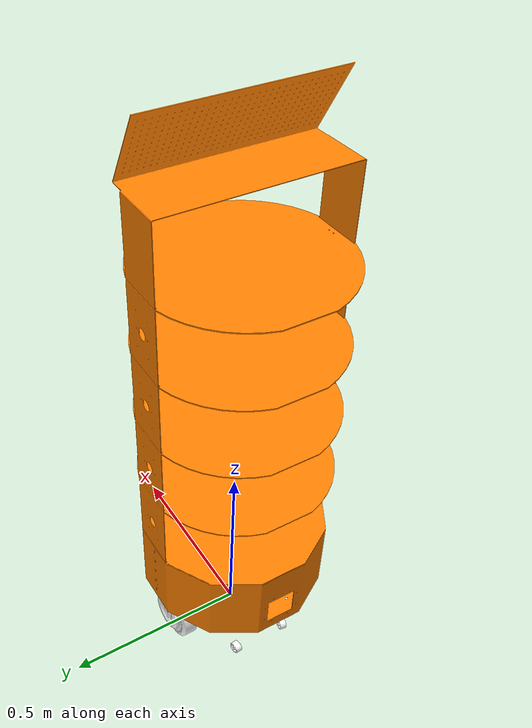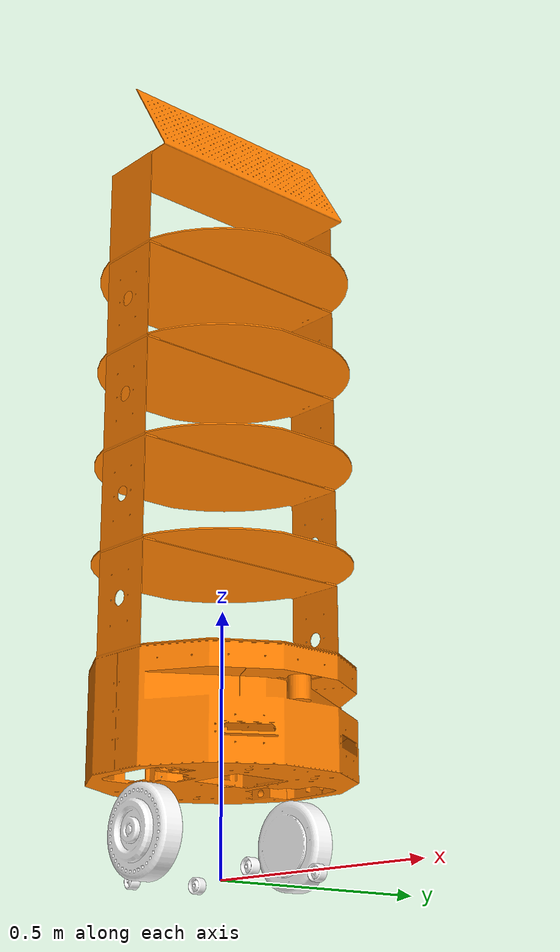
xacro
<?xml version="1.0" encoding="utf-8"?>
<!-- Derived from `urdf/reemen-clone.urdf` (SolidWorks exporter output). -->
<robot xmlns:xacro="http://www.ros.org/wiki/xacro" name="reemen">
  <!-- Mesh paths use `package://my_robot/...` so Gazebo can resolve them via `GZ_SIM_RESOURCE_PATH` / `IGN_GAZEBO_RESOURCE_PATH`. -->

  <xacro:arg name="robot_namespace" default="/"/>
  <xacro:arg name="controller_yaml" default="$(find reeman_clone_description)/config/diff_drive_controller.yaml"/>

  <link name="base_footprint"/>

  <joint name="base_footprint_joint" type="fixed">
    <parent link="base_footprint"/>
    <child link="base_link"/>
    <origin xyz="0 0 0.08" rpy="0 0 0"/>
  </joint>

  <!-- ROM DYNAMICS ADD -->
  <link name="camera_link"/>
  <joint name="camera_link_to_base_link" type="fixed">
    <origin xyz="0.1 0 1.3" rpy="0 0 0"/>
    <parent link="base_link"/>
    <child link="camera_link"/>
    <axis xyz="0 0 0"/>
  </joint>

  <link name="three_d_camera_link"/>
  <joint name="three_d_camera_link_to_base_link" type="fixed">
    <origin xyz="0.25 0 0.15" rpy="0 -0.78 0"/>
    <parent link="base_link"/>
    <child link="three_d_camera_link"/>
    <axis xyz="0 0 0"/>
  </joint>

  <link name="laser"/>
  <joint name="laser_to_base_link" type="fixed">
    <origin xyz="0.23 0 0.23" rpy="3.14 0 0"/>
    <parent link="base_link"/>
    <child link="laser"/>
    <axis xyz="0 0 0"/>
  </joint>

  <link name="usb_imu_link"/>
  <joint name="usb_imu_link_to_base_link" type="fixed">
    <origin xyz="0.07 0 0.05" rpy="0 3.14 -1.57"/>
    <parent link="base_link"/>
    <child link="usb_imu_link"/>
    <axis xyz="0 0 0"/>
  </joint>

  <link name="board_imu_link"/>
  <joint name="board_imu_link_to_base_link" type="fixed">
    <origin xyz="0.07 0 0.18" rpy="0 0 3.14"/>
    <parent link="base_link"/>
    <child link="board_imu_link"/>
    <axis xyz="0 0 0"/>
  </joint>
  <!-- ROM DYNAMICS END -->

  <link
    name="base_link">
    <inertial>
      <origin xyz="-0.02 0.0 -0.05" rpy="0 0 0" />
      <mass value="10.0" /> <inertia
        ixx="0.077"
        ixy="0"
        ixz="0"
        iyy="0.108"
        iyz="0"
        izz="0.161" />
    </inertial>
    <visual>
      <origin
        xyz="0 0 0"
        rpy="0 0 0" />
      <geometry>
        <mesh
          filename="package://reeman_clone_description/meshes/base_link.STL" />
      </geometry>
      <material
        name="">
        <color rgba="1.0 0.5 0.0 1.0" />
      </material>
    </visual>
    <collision>
      <!-- Simplified hull collision to avoid snagging on scanned-floor micro triangles. -->
      <origin
        xyz="0 0 0.08"
        rpy="0 0 0" />
      <geometry>
        <box size="0.34 0.28 0.12"/>
      </geometry>
    </collision>
  </link>

  <link
    name="right_wheel_link">
    <inertial>
      <origin
        xyz="-1.22238889496695E-09 0.00261076778922065 1.06166525570828E-09"
        rpy="0 0 0" />
      <mass
        value="1.13468316605061" />
      <inertia
        ixx="0.00214377738340467"
        ixy="1.90141727129734E-09"
        ixz="-8.50793852563956E-12"
        iyy="0.00371288553259231"
        iyz="-9.49731061124577E-10"
        izz="0.00214377736881791" />
    </inertial>
    <visual>
      <origin
        xyz="0 0 0"
        rpy="0 0 0" />
      <geometry>
        <mesh
          filename="package://reeman_clone_description/meshes/right_wheel_link.STL" />
      </geometry>
      <material
        name="">
        <color
          rgba="1 1 1 1" />
      </material>
    </visual>
    <collision>
      <!-- Use a simple cylinder collision for stable wheel-ground contact in Gazebo. -->
      <origin
        xyz="0 0 0"
        rpy="1.5708 0 0" />
      <geometry>
        <cylinder radius="0.085" length="0.045"/>
      </geometry>
    </collision>
  </link>

  <joint
    name="right_wheel_joint"
    type="continuous">
    <origin
      xyz="-0.000612714327570671 -0.178737474015559 -0.0067060362648815"
      rpy="0 0 0" />
    <parent
      link="base_link" />
    <child
      link="right_wheel_link" />
    <axis
      xyz="0 1 0" />
    <!-- effort limit gives Gazebo ODE motor a non-zero max force budget;
         without this, velocity commands have no traction and robot won't move -->
    <limit effort="10.0" velocity="15.0"/>
    <dynamics damping="0.001" friction="0.0"/>
  </joint>

  <link
    name="left_wheel_link">
    <inertial>
      <origin
        xyz="1.56960827668584E-09 -0.00261076778922059 -3.97111538097406E-10"
        rpy="0 0 0" />
      <mass
        value="1.1346831660506" />
      <inertia
        ixx="0.00214377738155265"
        ixy="1.86551956893084E-09"
        ixz="-9.79641792816089E-12"
        iyy="0.00371288553259228"
        iyz="-1.0184368717158E-09"
        izz="0.0021437773706699" />
    </inertial>
    <visual>
      <origin
        xyz="0 0 0"
        rpy="0 0 0" />
      <geometry>
        <mesh
          filename="package://reeman_clone_description/meshes/left_wheel_link.STL" />
      </geometry>
      <material
        name="">
        <color
          rgba="1 1 1 1" />
      </material>
    </visual>
    <collision>
      <!-- Use a simple cylinder collision for stable wheel-ground contact in Gazebo. -->
      <origin
        xyz="0 0 0"
        rpy="1.5708 0 0" />
      <geometry>
        <cylinder radius="0.085" length="0.045"/>
      </geometry>
    </collision>
  </link>

  <joint
    name="left_wheel_joint"
    type="continuous">
    <origin
      xyz="-0.00111271860764666 0.186733072210104 -0.0067060362648807"
      rpy="0 0 0" />
    <parent
      link="base_link" />
    <child
      link="left_wheel_link" />
    <axis
      xyz="0 1 0" />
    <limit effort="10.0" velocity="15.0"/>
    <dynamics damping="0.001" friction="0.0"/>
  </joint>

  <link
    name="front_right_caster_link">
    <inertial>
      <origin
        xyz="9.80282521823028E-12 3.37561645302742E-11 -1.03845265719826E-11"
        rpy="0 0 0" />
      <mass
        value="0.0103871549572359" />
      <inertia
        ixx="9.72294235682643E-07"
        ixy="5.19022156708706E-09"
        ixz="4.6110233329234E-15"
        iyy="1.47607253400214E-06"
        iyz="4.47572669905215E-13"
        izz="9.72240768629537E-07" />
    </inertial>
    <visual>
      <origin
        xyz="0 0 0"
        rpy="0 0 0" />
      <geometry>
        <mesh
          filename="package://reeman_clone_description/meshes/front_right_caster_link.STL" />
      </geometry>
      <material
        name="">
        <color
          rgba="1 1 1 1" />
      </material>
    </visual>
    <collision>
      <origin xyz="0 0 0" rpy="0 0 0" />
      <geometry>
        <!-- Actual STL radius: x/z extents ±0.016m -->
        <sphere radius="0.016"/>
      </geometry>
    </collision>
  </link>

  <joint
    name="front_right_caster_joint"
    type="fixed">
    <origin
      xyz="0.16615 -0.074374 -0.073"
      rpy="0 0 0" />
    <parent
      link="base_link" />
    <child
      link="front_right_caster_link" />
    <axis
      xyz="0 0 0" />
  </joint>

  <link
    name="front_left_caster_link">
    <inertial>
      <origin
        xyz="0 2.77555756156289E-17 0"
        rpy="0 0 0" />
      <mass
        value="0.0103871549572359" />
      <inertia
        ixx="9.7503779582315E-07"
        ixy="-3.74373788735228E-08"
        ixz="-1.59185679989932E-14"
        iyy="1.4733289738613E-06"
        iyz="2.13068500263688E-13"
        izz="9.72240768629193E-07" />
    </inertial>
    <visual>
      <origin
        xyz="0 0 0"
        rpy="0 0 0" />
      <geometry>
        <mesh
          filename="package://reeman_clone_description/meshes/front_left_caster_link.STL" />
      </geometry>
      <material
        name="">
        <color
          rgba="1 1 1 1" />
      </material>
    </visual>
    <collision>
      <origin xyz="0 0 0" rpy="0 0 0" />
      <geometry>
        <sphere radius="0.016"/>
      </geometry>
    </collision>
  </link>

  <joint
    name="front_left_caster_joint"
    type="fixed">
    <origin
      xyz="0.16674791871922 0.0817655257441773 -0.073"
      rpy="0 0 0" />
    <parent
      link="base_link" />
    <child
      link="front_left_caster_link" />
    <axis
      xyz="0 0 0" />
  </joint>

  <link
    name="back_right_caster_link">
    <inertial>
      <origin
        xyz="0 1.38777878078145E-17 -2.77555756156289E-17"
        rpy="0 0 0" />
      <mass
        value="0.0103871549572359" />
      <inertia
        ixx="9.81214153150242E-07"
        ixy="6.66410857927456E-08"
        ixz="3.42446508638621E-23"
        iyy="1.4671526165342E-06"
        iyz="9.21100098637752E-23"
        izz="9.72240768629191E-07" />
    </inertial>
    <visual>
      <origin
        xyz="0 0 0"
        rpy="0 0 0" />
      <geometry>
        <mesh
          filename="package://reeman_clone_description/meshes/back_right_caster_link.STL" />
      </geometry>
      <material
        name="">
        <color
          rgba="1 1 1 1" />
      </material>
    </visual>
    <collision>
      <origin xyz="0 0 0" rpy="0 0 0" />
      <geometry>
        <sphere radius="0.016"/>
      </geometry>
    </collision>
  </link>

  <joint
    name="back_right_caster_joint"
    type="fixed">
    <origin
      xyz="-0.16677 -0.073778 -0.073"
      rpy="0 0 0" />
    <parent
      link="base_link" />
    <child
      link="back_right_caster_link" />
    <axis
      xyz="0 0 0" />
  </joint>

  <link
    name="back_left_caster_link">
    <inertial>
      <origin
        xyz="0 0 0"
        rpy="0 0 0" />
      <mass
        value="0.01" />
      <!-- Small but non-zero inertia to prevent Gazebo physics NaN -->
      <inertia
        ixx="9.72E-07"
        ixy="0"
        ixz="0"
        iyy="1.47E-06"
        iyz="0"
        izz="9.72E-07" />
    </inertial>
    <visual>
      <origin
        xyz="0 0 0"
        rpy="0 0 0" />
      <geometry>
        <mesh
          filename="package://reeman_clone_description/meshes/back_left_caster_link.STL" />
      </geometry>
      <material
        name="">
        <color
          rgba="1 1 1 1" />
      </material>
    </visual>
    <collision>
      <origin xyz="0 0 0" rpy="0 0 0" />
      <geometry>
        <sphere radius="0.016"/>
      </geometry>
    </collision>
  </link>

  <joint
    name="back_left_caster_joint"
    type="fixed">
    <origin
      xyz="-0.166770030766659 0.0817624983187506 -0.073"
      rpy="0 0 0" />
    <parent
      link="base_link" />
    <child
      link="back_left_caster_link" />
    <axis
      xyz="0 0 0" />
  </joint>

  <ros2_control name="DiffBotSystem" type="system">
    <hardware>
      <plugin>gz_ros2_control/GazeboSimSystem</plugin>
    </hardware>
    <joint name="left_wheel_joint">
      <command_interface name="velocity"/>
      <state_interface name="position"/>
      <state_interface name="velocity"/>
    </joint>
    <joint name="right_wheel_joint">
      <command_interface name="velocity"/>
      <state_interface name="position"/>
      <state_interface name="velocity"/>
    </joint>
  </ros2_control>

  <!-- COLOR -->
  <gazebo reference="base_link">
    <material>Gazebo/Orange</material>
  </gazebo>

  <gazebo reference="left_wheel_link">
    <material>Gazebo/Black</material>
  </gazebo>

  <gazebo reference="right_wheel_link">
    <material>Gazebo/Black</material>
  </gazebo>
  <!-- === Wheel friction: HIGH so wheels grip the ground and propel the robot === -->
  <gazebo reference="left_wheel_link">
    <collision>
      <surface>
        <friction>
          <ode>
            <mu>1.2</mu>
            <mu2>1.2</mu2>
            <slip1>0.0</slip1>
            <slip2>0.0</slip2>
          </ode>
          <torsional>
            <coefficient>0.001</coefficient>
            <use_patch_radius>true</use_patch_radius>
            <patch_radius>0.085</patch_radius>
          </torsional>
        </friction>
        <contact>
          <ode>
            <kp>1e7</kp>
            <kd>1.0</kd>
            <max_vel>0.01</max_vel>
            <min_depth>0.001</min_depth>
          </ode>
        </contact>
      </surface>
    </collision>
  </gazebo>

  <gazebo reference="right_wheel_link">
    <collision>
      <surface>
        <friction>
          <ode>
            <mu>1.2</mu>
            <mu2>1.2</mu2>
            <slip1>0.0</slip1>
            <slip2>0.0</slip2>
          </ode>
          <torsional>
            <coefficient>0.001</coefficient>
            <use_patch_radius>true</use_patch_radius>
            <patch_radius>0.085</patch_radius>
          </torsional>
        </friction>
        <contact>
          <ode>
            <kp>1e7</kp>
            <kd>1.0</kd>
            <max_vel>0.01</max_vel>
            <min_depth>0.001</min_depth>
          </ode>
        </contact>
      </surface>
    </collision>
  </gazebo>

  <!-- === Caster friction: NEAR-ZERO so they slide freely === -->
  <gazebo reference="front_right_caster_link">
    <collision>
      <surface>
        <friction>
          <ode><mu>0.0</mu><mu2>0.0</mu2></ode>
        </friction>
	<contact><ode><kp>1e7</kp><kd>1.0</kd><max_vel>0.01</max_vel><min_depth>0.001</min_depth></ode></contact>
      </surface>
    </collision>
  </gazebo>

  <gazebo reference="front_left_caster_link">
    <collision>
      <surface>
        <friction>
          <ode><mu>0.0</mu><mu2>0.0</mu2></ode>
        </friction>
	<contact><ode><kp>1e7</kp><kd>1.0</kd><max_vel>0.01</max_vel><min_depth>0.001</min_depth></ode></contact>
      </surface>
    </collision>
  </gazebo>

  <gazebo reference="back_right_caster_link">
    <collision>
      <surface>
        <friction>
          <ode><mu>0.0</mu><mu2>0.0</mu2></ode>
        </friction>
	<contact><ode><kp>1e7</kp><kd>1.0</kd><max_vel>0.01</max_vel><min_depth>0.001</min_depth></ode></contact>
      </surface>
    </collision>
  </gazebo>

  <gazebo reference="back_left_caster_link">
    <collision>
      <surface>
        <friction>
          <ode><mu>0.0</mu><mu2>0.0</mu2></ode>
        </friction>
	<contact><ode><kp>1e7</kp><kd>1.0</kd><max_vel>0.01</max_vel><min_depth>0.001</min_depth></ode></contact>
      </surface>
    </collision>
  </gazebo>

  <!-- IMU sensors -->
<gazebo reference="usb_imu_link">
  <sensor name="usb_imu_sensor" type="imu">
    <always_on>1</always_on>
    <update_rate>100</update_rate>
    <visualize>true</visualize>
    <topic>/imu/out</topic>
    <gz_frame_id>usb_imu_link</gz_frame_id>
    <imu>
      <angular_velocity>
        <x><noise type="gaussian"><mean>0.0</mean><stddev>2e-4</stddev></noise></x>
        <y><noise type="gaussian"><mean>0.0</mean><stddev>2e-4</stddev></noise></y>
        <z><noise type="gaussian"><mean>0.0</mean><stddev>2e-4</stddev></noise></z>
      </angular_velocity>
      <linear_acceleration>
        <x><noise type="gaussian"><mean>0.0</mean><stddev>1.7e-2</stddev></noise></x>
        <y><noise type="gaussian"><mean>0.0</mean><stddev>1.7e-2</stddev></noise></y>
        <z><noise type="gaussian"><mean>0.0</mean><stddev>1.7e-2</stddev></noise></z>
      </linear_acceleration>
    </imu>
  </sensor>
</gazebo>

<gazebo reference="board_imu_link">
  <sensor name="board_imu_sensor" type="imu">
    <always_on>1</always_on>
    <update_rate>100</update_rate>
    <visualize>true</visualize>
    <topic>/imu/wit/out</topic>
    <gz_frame_id>board_imu_link</gz_frame_id>
    <imu>
      <angular_velocity>
        <x><noise type="gaussian"><mean>0.0</mean><stddev>2e-4</stddev></noise></x>
        <y><noise type="gaussian"><mean>0.0</mean><stddev>2e-4</stddev></noise></y>
        <z><noise type="gaussian"><mean>0.0</mean><stddev>2e-4</stddev></noise></z>
      </angular_velocity>
      <linear_acceleration>
        <x><noise type="gaussian"><mean>0.0</mean><stddev>1.7e-2</stddev></noise></x>
        <y><noise type="gaussian"><mean>0.0</mean><stddev>1.7e-2</stddev></noise></y>
        <z><noise type="gaussian"><mean>0.0</mean><stddev>1.7e-2</stddev></noise></z>
      </linear_acceleration>
    </imu>
  </sensor>
</gazebo>

  <!-- RGB Camera sensor -->
<gazebo reference="camera_link">
  <sensor name="camera_sensor" type="camera">
    <ign_frame_id>camera_link_optical</ign_frame_id>
    <update_rate>30</update_rate>
    <always_on>1</always_on>
    <visualize>true</visualize>
    <topic>/camera/image_raw</topic>

    <camera>
      <horizontal_fov>1.047</horizontal_fov>
      <image>
        <width>640</width>
        <height>480</height>
        <format>R8G8B8</format>
      </image>
      <clip>
        <near>0.1</near>
        <far>100.0</far>
      </clip>
      <noise>
        <type>gaussian</type>
        <mean>0.0</mean>
        <stddev>0.007</stddev>
      </noise>
    </camera>
  </sensor>
</gazebo>

  <!-- 3D Camera (RGBD) sensor -->
  <gazebo reference="three_d_camera_link">
    <sensor name="rgbd_camera_sensor" type="rgbd_camera">
      <update_rate>30</update_rate>
      <always_on>1</always_on>
      <visualize>true</visualize>
      <topic>/three_d_camera</topic>

      <gz_frame_id>three_d_camera_link_optical</gz_frame_id>

      <camera>
        <horizontal_fov>1.047</horizontal_fov>
        <image>
          <width>640</width>
          <height>480</height>
          <format>R8G8B8</format>
        </image>
        <clip>
          <near>0.1</near>
          <far>10.0</far> </clip>
        <noise>
          <type>gaussian</type>
          <mean>0.0</mean>
          <stddev>0.007</stddev>
        </noise>
        <depth_camera>
          <clip>
            <near>0.1</near>
            <far>10.0</far>
          </clip>
        </depth_camera>
      </camera>
    </sensor>
  </gazebo>

  <!-- GPU Lidar sensor (360° 2D scan) -->
  <gazebo reference="laser">
    <sensor name="gpu_lidar_sensor" type="gpu_lidar">
      <topic>/scan</topic>
      <gz_frame_id>laser</gz_frame_id>
      <update_rate>10</update_rate>
      <lidar>
        <scan>
          <horizontal>
            <samples>640</samples>
            <resolution>1</resolution>
            <min_angle>-1.91986</min_angle>
            <max_angle>1.91986</max_angle>
          </horizontal>
          <vertical>
            <samples>1</samples>
            <resolution>0.01</resolution>
            <min_angle>0</min_angle>
            <max_angle>0</max_angle>
          </vertical>
        </scan>
        <range>
          <min>0.08</min>
          <max>10.0</max>
          <resolution>0.01</resolution>
        </range>
        <noise>
          <type>gaussian</type>
          <mean>0</mean>
          <stddev>0.01</stddev>
        </noise>
      </lidar>
      <always_on>1</always_on>
      <visualize>true</visualize>
    </sensor>
  </gazebo>

  <gazebo>
    <plugin filename="gz_ros2_control-system" name="gz_ros2_control::GazeboSimROS2ControlPlugin">
      <ros>
        <namespace>$(arg robot_namespace)</namespace>
      </ros>
      <parameters>$(arg controller_yaml)</parameters>
    </plugin>
  </gazebo>
</robot>
